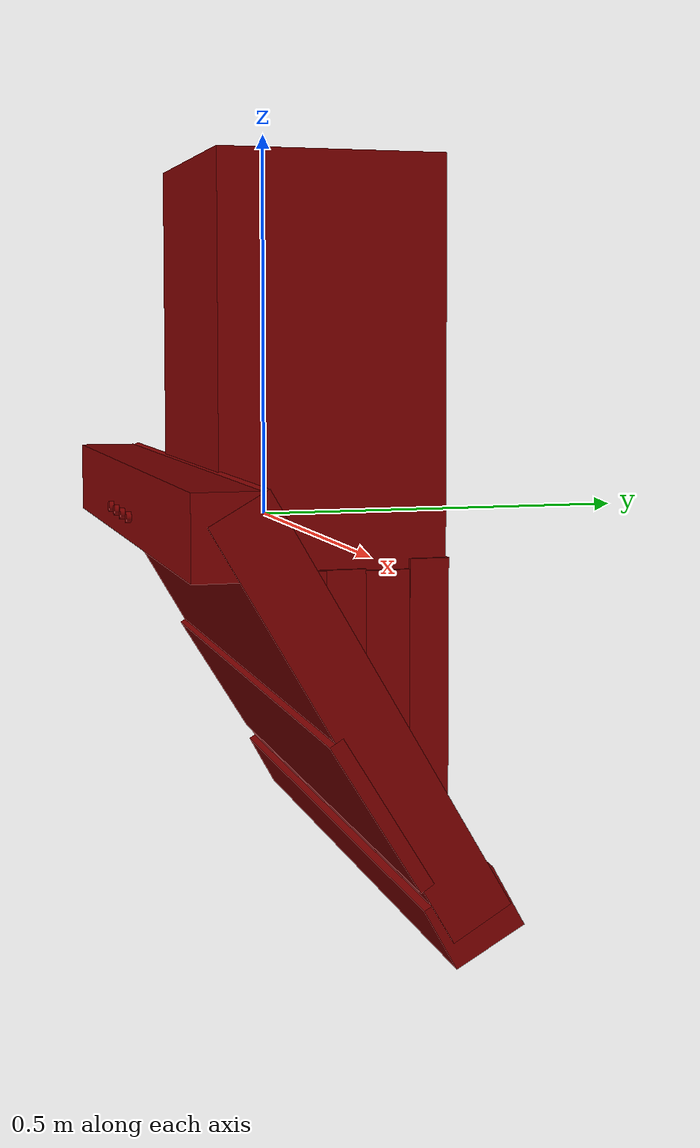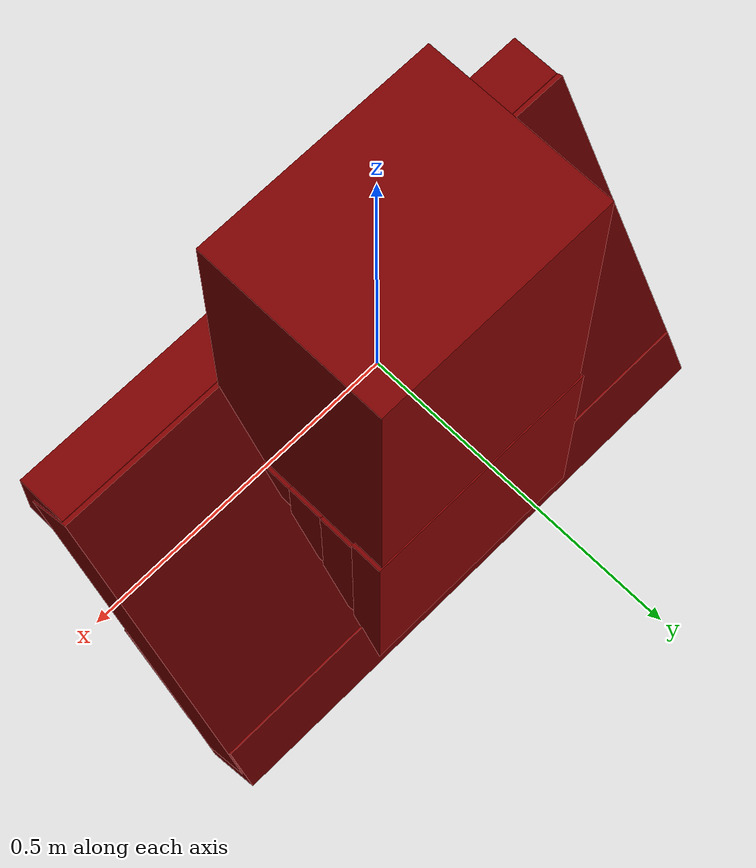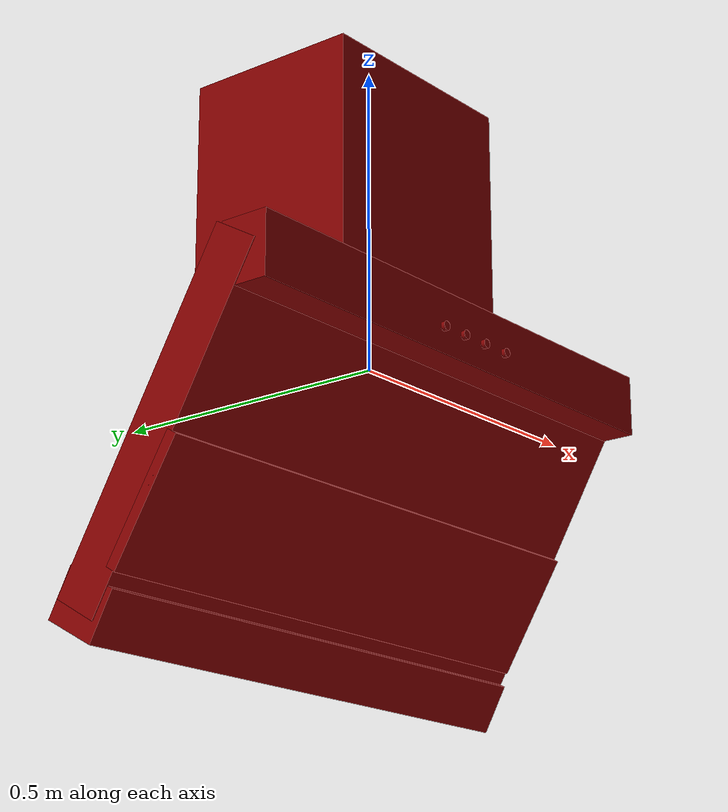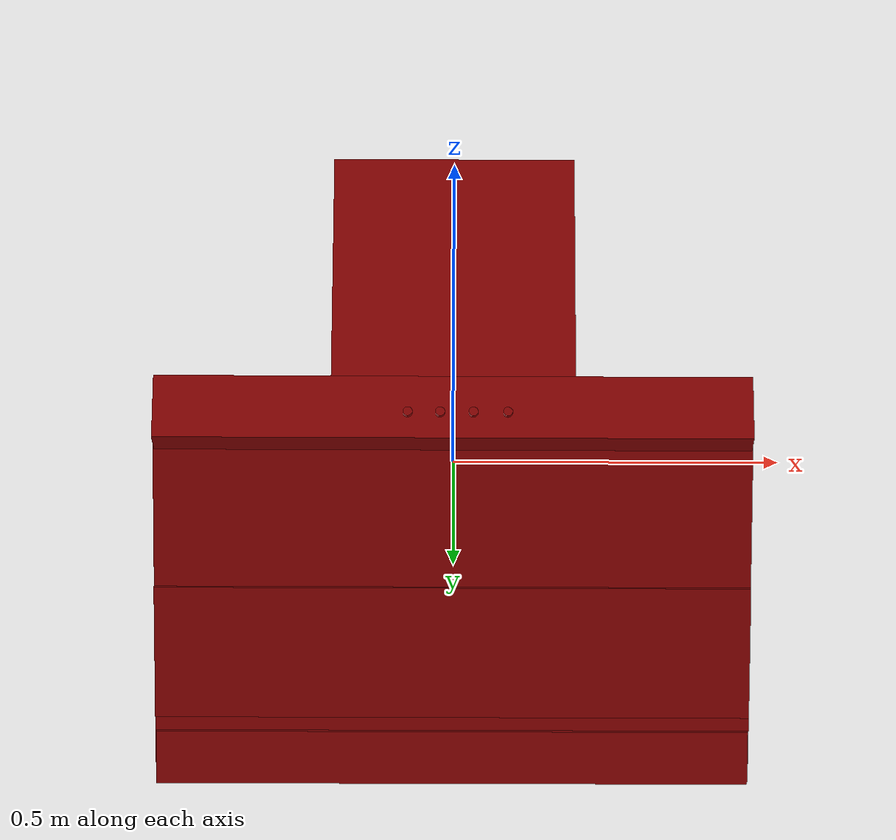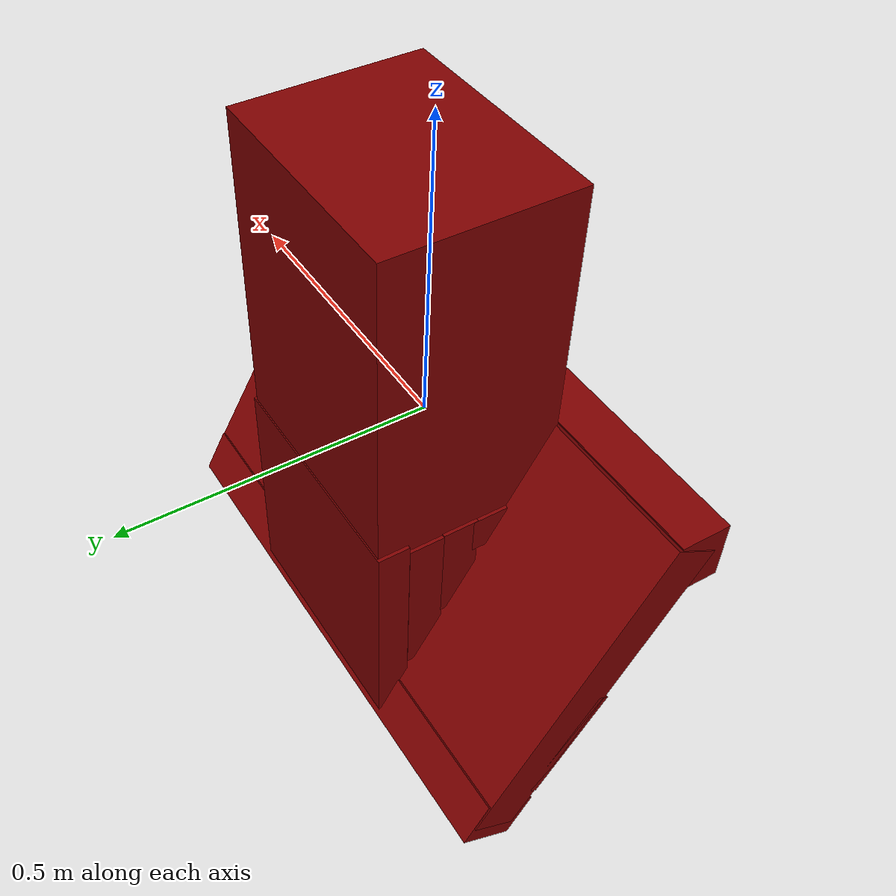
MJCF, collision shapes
<?xml version='1.0' encoding='UTF-8'?>
<mujoco model="model">
  <compiler angle="radian"/>
  <asset>
    <mesh file="visuals/Body001.obj" name="Body001_vis"/>
    <mesh file="visuals/Button001.obj" name="Button001_vis"/>
    <mesh file="visuals/Button002.obj" name="Button002_vis"/>
    <mesh file="visuals/Button003.obj" name="Button003_vis"/>
    <mesh file="visuals/Button004.obj" name="Button004_vis"/>
    <texture file="visuals/T_BC001.png" name="Body001_material" type="2d"/>
    <material name="Body001_material" rgba="1 1 1 1.0" texture="Body001_material" shininess="0.4472135901451111" specular="0.3103448502657381"/>
    <texture file="visuals/T_BC001.png" name="Button001_material" type="2d"/>
    <material name="Button001_material" rgba="1 1 1 1.0" texture="Button001_material" shininess="0.4472135901451111" specular="0.3103448502657381"/>
    <texture file="visuals/T_BC001.png" name="Button002_material" type="2d"/>
    <material name="Button002_material" rgba="1 1 1 1.0" texture="Button002_material" shininess="0.4472135901451111" specular="0.3103448502657381"/>
    <texture file="visuals/T_BC001.png" name="Button003_material" type="2d"/>
    <material name="Button003_material" rgba="1 1 1 1.0" texture="Button003_material" shininess="0.4472135901451111" specular="0.3103448502657381"/>
    <texture file="visuals/T_BC001.png" name="Button004_material" type="2d"/>
    <material name="Button004_material" rgba="1 1 1 1.0" texture="Button004_material" shininess="0.4472135901451111" specular="0.3103448502657381"/>
  </asset>
  <default>
    <default class="visual">
      <geom conaffinity="0" contype="0" group="1" type="mesh"/>
    </default>
    <default class="collision">
      <geom group="0" rgba="0.5 0 0 0.5"/>
    </default>
    <default class="spawn">
      <geom group="0" rgba="1 1 1 0.5" contype="0" conaffinity="0"/>
      <site group="0" rgba="1 1 1 0.5"/>
    </default>
    <default class="region">
      <geom group="1" conaffinity="0" contype="0" rgba="0 1 0 0"/>
    </default>
  </default>
  <worldbody>
    <body>
      <body name="object">
        <geom mesh="Body001_vis" type="mesh" solimp="0.998 0.998 0.001" solref="0.001 1" density="100" friction="0.95 0.3 0.1" class="visual" material="Body001_material"/>
        <geom class="collision" type="box" pos="0.000000 0.113737 -0.189876" size="0.19241851568222046 0.029106255620718002 0.13367046415805817" quat="1.0 0.0 0.0 0.0"/>
        <geom class="collision" type="box" pos="-0.000000 0.028467 -0.296740" size="0.45237573981285095 0.009198252111673355 0.1013280600309372" quat="0.9622051119804382 0.2723257839679718 6.046847772951262e-17 2.4051126544262927e-24"/>
        <geom class="collision" type="box" pos="0.000000 0.168943 -0.233227" size="0.19249992072582245 0.02581067383289337 0.18995174765586853" quat="1.0 0.0 0.0 0.0"/>
        <geom class="collision" type="box" pos="0.000000 0.138336 -0.422350" size="0.4505537450313568 0.0465073436498642 0.04060443863272667" quat="0.9683843851089478 0.24946288764476776 5.5391918109041983e-17 -2.4956922273617112e-24"/>
        <geom class="collision" type="box" pos="-0.000000 -0.145408 0.020280" size="0.4505537450313568 0.03928837552666664 0.049246594309806824" quat="1.0 0.0 0.0 0.0"/>
        <geom class="collision" type="box" pos="-0.000000 0.007435 -0.188751" size="0.45237573981285095 0.03970082104206085 0.27801474928855896" quat="0.9654943346977234 0.2604241669178009 5.782578787363841e-17 7.079465744254969e-24"/>
        <geom class="collision" type="box" pos="-0.000000 0.046066 0.203411" size="0.1868787556886673 0.14641724526882172 0.26082199811935425" quat="1.0 0.0 0.0 0.0"/>
        <geom class="collision" type="box" pos="0.000000 0.056368 -0.140943" size="0.19241851568222046 0.029106255620718002 0.08701632171869278" quat="1.0 0.0 0.0 0.0"/>
        <geom class="collision" type="box" pos="0.000000 0.005747 -0.085261" size="0.19241851568222046 0.029106255620718002 0.03062935173511505" quat="1.0 0.0 0.0 0.0"/>
        <body name="Button001">
          <joint axis="0.0 1.0 0.0" pos="-0.068065 -0.195288 0.008071" limited="true" name="Button001_joint" range="0.0 0.004" type="slide" damping="1" frictionloss="1" armature=".01" stiffness="0.05"/>
          <geom mesh="Button001_vis" type="mesh" solimp="0.998 0.998 0.001" solref="0.001 1" density="100" friction="0.95 0.3 0.1" class="visual" material="Button001_material"/>
          <geom class="collision" type="cylinder" pos="-0.068172 -0.195333 0.008152" size="0.007079710252583027 0.0032555325888097286" quat="0.7071068286895752 0.7071067690849304 -1.5700924318127872e-16 -5.9269340452702814e-24"/>
        </body>
        <body name="Button002">
          <joint axis="0.0 1.0 0.0" pos="-0.019355 -0.195290 0.008071" limited="true" name="Button002_joint" range="0.0 0.004" type="slide" damping="1" frictionloss="1" armature=".01" stiffness="0.05"/>
          <geom mesh="Button002_vis" type="mesh" solimp="0.998 0.998 0.001" solref="0.001 1" density="100" friction="0.95 0.3 0.1" class="visual" material="Button002_material"/>
          <geom class="collision" type="cylinder" pos="-0.019463 -0.195335 0.008152" size="0.007079710252583027 0.0032555325888097286" quat="0.7071068286895752 0.7071067690849304 -1.5700924318127872e-16 -5.9269340452702814e-24"/>
        </body>
        <body name="Button003">
          <joint axis="0.0 1.0 0.0" pos="0.030503 -0.195292 0.008071" limited="true" name="Button003_joint" range="0.0 0.004" type="slide" damping="1" frictionloss="1" armature=".01" stiffness="0.05"/>
          <geom mesh="Button003_vis" type="mesh" solimp="0.998 0.998 0.001" solref="0.001 1" density="100" friction="0.95 0.3 0.1" class="visual" material="Button003_material"/>
          <geom class="collision" type="cylinder" pos="0.030395 -0.195338 0.008152" size="0.007079710252583027 0.0032555325888097286" quat="0.7071068286895752 0.7071067690849304 -1.5700924318127872e-16 -5.9269340452702814e-24"/>
        </body>
        <body name="Button004">
          <joint axis="0.0 1.0 0.0" pos="0.082168 -0.195294 0.008071" limited="true" name="Button004_joint" range="0.0 0.004" type="slide" damping="1" frictionloss="1" armature=".01" stiffness="0.05"/>
          <geom mesh="Button004_vis" type="mesh" solimp="0.998 0.998 0.001" solref="0.001 1" density="100" friction="0.95 0.3 0.1" class="visual" material="Button004_material"/>
          <geom class="collision" type="cylinder" pos="0.082060 -0.195340 0.008152" size="0.007079710252583027 0.0032555325888097286" quat="0.7071068286895752 0.7071067690849304 -1.5700924318127872e-16 -5.9269340452702814e-24"/>
        </body>
        <geom class="region" name="reg_main" type="box" pos="0.0 -1.000000000001e-06 -0.0010014999999999885" size="0.447156 0.198355 0.4632325"/>
      </body>
    </body>
  </worldbody>
  <actuator>
    <motor name="Button001_joint_actuator" joint="Button001_joint" gear="0.5"/>
    <motor name="Button002_joint_actuator" joint="Button002_joint" gear="0.5"/>
    <motor name="Button003_joint_actuator" joint="Button003_joint" gear="0.5"/>
    <motor name="Button004_joint_actuator" joint="Button004_joint" gear="0.5"/>
  </actuator>
</mujoco>
